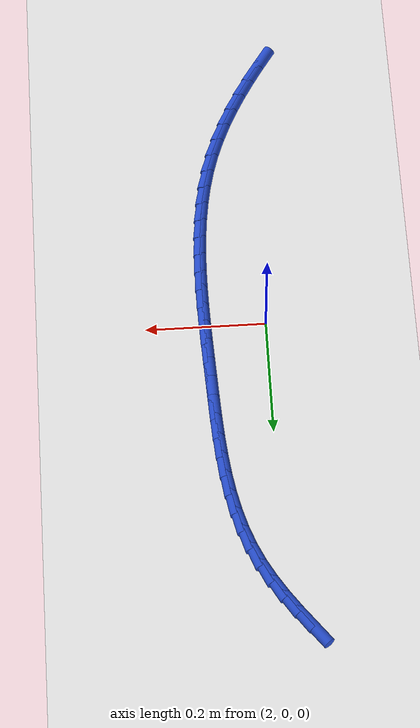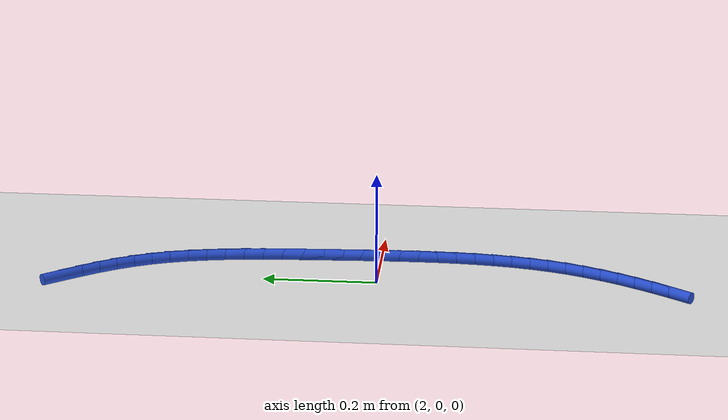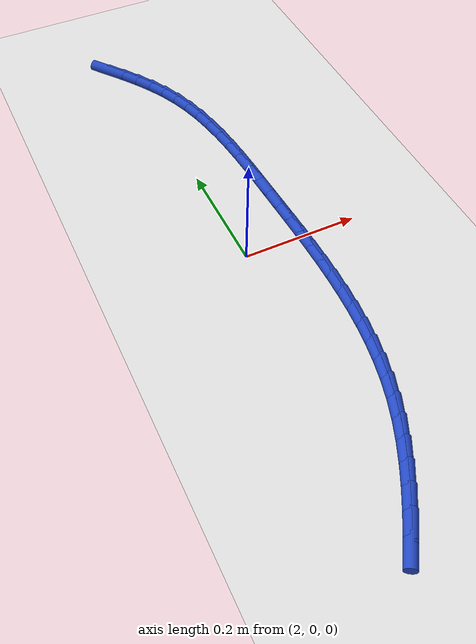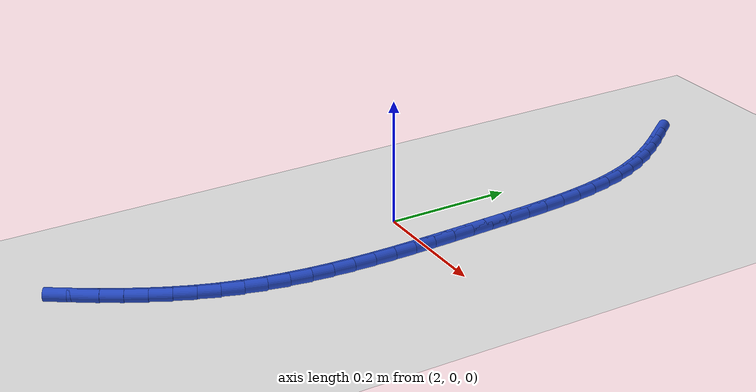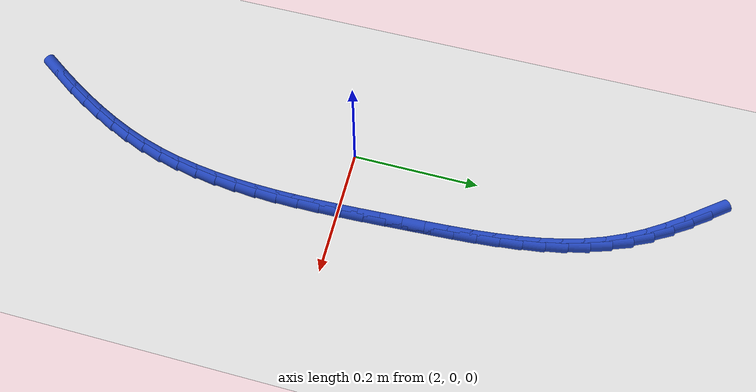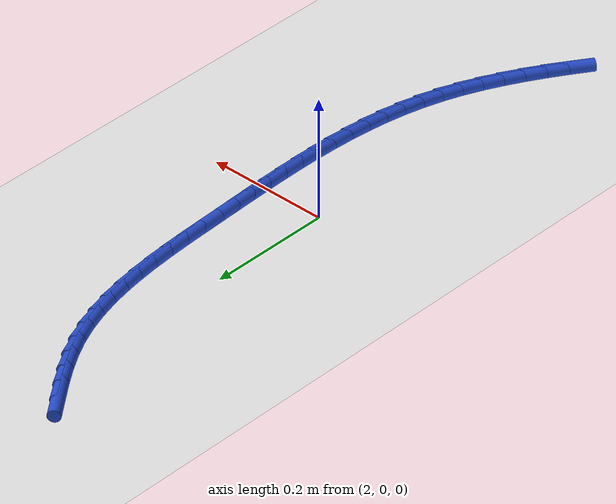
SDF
<sdf version="1.6">
 <world name="default">
  <model name="ground_plane">
   <static>1</static>
   <link name="link">
    <collision name="collision">
     <geometry><plane><normal>0 0 1</normal><size>100 100</size></plane></geometry>
     <surface><friction><ode><mu>100</mu><mu2>50</mu2></ode></friction></surface>
    </collision>
    <visual name="visual">
     <cast_shadows>0</cast_shadows>
     <geometry><plane><normal>0 0 1</normal><size>100 100</size></plane></geometry>
     <material>
      <script><uri>file://media/materials/scripts/gazebo.material</uri><name>Gazebo/WhiteGlow</name></script>
     </material>
    </visual>
   </link>
  </model>
  <model name="line">
   <link name="link_83">
    <pose>1.9635133234780977 0.5467332277633766 0.01 0 1.57 -0.9212567549371053</pose>
    <collision name="collision">
     <geometry><cylinder><radius>0.01</radius><length>0.08</length></cylinder></geometry>
    </collision>
    <visual name="visual">
     <material>
      <script><name>Gazebo/Blue</name><uri>file://media/materials/scripts/gazebo.material</uri></script>
     </material>
     <geometry><cylinder><radius>0.01</radius><length>0.08</length></cylinder></geometry>
    </visual>
   </link>
   <link name="link_84">
    <pose>1.9838382470766431 0.5199715310657844 0.01 0 1.57 -0.9577809125137218</pose>
    <collision name="collision">
     <geometry><cylinder><radius>0.01</radius><length>0.08</length></cylinder></geometry>
    </collision>
    <visual name="visual">
     <material>
      <script><name>Gazebo/Blue</name><uri>file://media/materials/scripts/gazebo.material</uri></script>
     </material>
     <geometry><cylinder><radius>0.01</radius><length>0.08</length></cylinder></geometry>
    </visual>
   </link>
   <link name="link_85">
    <pose>2.0029737586245524 0.49276786948143775 0.01 0 1.57 -1.007544113193847</pose>
    <collision name="collision">
     <geometry><cylinder><radius>0.01</radius><length>0.08</length></cylinder></geometry>
    </collision>
    <visual name="visual">
     <material>
      <script><name>Gazebo/Blue</name><uri>file://media/materials/scripts/gazebo.material</uri></script>
     </material>
     <geometry><cylinder><radius>0.01</radius><length>0.08</length></cylinder></geometry>
    </visual>
   </link>
   <link name="link_86">
    <pose>2.020552856724809 0.4649303486055757 0.01 0 1.57 -1.0708805650021231</pose>
    <collision name="collision">
     <geometry><cylinder><radius>0.01</radius><length>0.08</length></cylinder></geometry>
    </collision>
    <visual name="visual">
     <material>
      <script><name>Gazebo/Blue</name><uri>file://media/materials/scripts/gazebo.material</uri></script>
     </material>
     <geometry><cylinder><radius>0.01</radius><length>0.08</length></cylinder></geometry>
    </visual>
   </link>
   <link name="link_87">
    <pose>2.036208539980396 0.43626707403343595 0.01 0 1.57 -1.1472410660836165</pose>
    <collision name="collision">
     <geometry><cylinder><radius>0.01</radius><length>0.08</length></cylinder></geometry>
    </collision>
    <visual name="visual">
     <material>
      <script><name>Gazebo/Blue</name><uri>file://media/materials/scripts/gazebo.material</uri></script>
     </material>
     <geometry><cylinder><radius>0.01</radius><length>0.08</length></cylinder></geometry>
    </visual>
   </link>
   <link name="link_88">
    <pose>2.0495870495548947 0.406592683746153 0.01 0 1.57 -1.2255441221676449</pose>
    <collision name="collision">
     <geometry><cylinder><radius>0.01</radius><length>0.08</length></cylinder></geometry>
    </collision>
    <visual name="visual">
     <material>
      <script><name>Gazebo/Blue</name><uri>file://media/materials/scripts/gazebo.material</uri></script>
     </material>
     <geometry><cylinder><radius>0.01</radius><length>0.08</length></cylinder></geometry>
    </visual>
   </link>
   <link name="link_89">
    <pose>2.0606364382333635 0.37587069554040914 0.01 0 1.57 -1.294732867674398</pose>
    <collision name="collision">
     <geometry><cylinder><radius>0.01</radius><length>0.08</length></cylinder></geometry>
    </collision>
    <visual name="visual">
     <material>
      <script><name>Gazebo/Blue</name><uri>file://media/materials/scripts/gazebo.material</uri></script>
     </material>
     <geometry><cylinder><radius>0.01</radius><length>0.08</length></cylinder></geometry>
    </visual>
   </link>
   <link name="link_90">
    <pose>2.0696050410072577 0.3442127525875256 0.01 0 1.57 -1.3541168987590173</pose>
    <collision name="collision">
     <geometry><cylinder><radius>0.01</radius><length>0.08</length></cylinder></geometry>
    </collision>
    <visual name="visual">
     <material>
      <script><name>Gazebo/Blue</name><uri>file://media/materials/scripts/gazebo.material</uri></script>
     </material>
     <geometry><cylinder><radius>0.01</radius><length>0.08</length></cylinder></geometry>
    </visual>
   </link>
   <link name="link_91">
    <pose>2.0767541295431444 0.31173687955531665 0.01 0 1.57 -1.4038430804448196</pose>
    <collision name="collision">
     <geometry><cylinder><radius>0.01</radius><length>0.08</length></cylinder></geometry>
    </collision>
    <visual name="visual">
     <material>
      <script><name>Gazebo/Blue</name><uri>file://media/materials/scripts/gazebo.material</uri></script>
     </material>
     <geometry><cylinder><radius>0.01</radius><length>0.08</length></cylinder></geometry>
    </visual>
   </link>
   <link name="link_92">
    <pose>2.08234497550759 0.27856110111159677 0.01 0 1.57 -1.4442786596421489</pose>
    <collision name="collision">
     <geometry><cylinder><radius>0.01</radius><length>0.08</length></cylinder></geometry>
    </collision>
    <visual name="visual">
     <material>
      <script><name>Gazebo/Blue</name><uri>file://media/materials/scripts/gazebo.material</uri></script>
     </material>
     <geometry><cylinder><radius>0.01</radius><length>0.08</length></cylinder></geometry>
    </visual>
   </link>
   <link name="link_93">
    <pose>2.0866388505671605 0.2448034419241805 0.01 0 1.57 -1.4758740457370778</pose>
    <collision name="collision">
     <geometry><cylinder><radius>0.01</radius><length>0.08</length></cylinder></geometry>
    </collision>
    <visual name="visual">
     <material>
      <script><name>Gazebo/Blue</name><uri>file://media/materials/scripts/gazebo.material</uri></script>
     </material>
     <geometry><cylinder><radius>0.01</radius><length>0.08</length></cylinder></geometry>
    </visual>
   </link>
   <link name="link_94">
    <pose>2.0898970263884222 0.21058192666088207 0.01 0 1.57 -1.4990671564346123</pose>
    <collision name="collision">
     <geometry><cylinder><radius>0.01</radius><length>0.08</length></cylinder></geometry>
    </collision>
    <visual name="visual">
     <material>
      <script><name>Gazebo/Blue</name><uri>file://media/materials/scripts/gazebo.material</uri></script>
     </material>
     <geometry><cylinder><radius>0.01</radius><length>0.08</length></cylinder></geometry>
    </visual>
   </link>
   <link name="link_95">
    <pose>2.0923807746379413 0.17601457998951606 0.01 0 1.57 -1.5142226561445344</pose>
    <collision name="collision">
     <geometry><cylinder><radius>0.01</radius><length>0.08</length></cylinder></geometry>
    </collision>
    <visual name="visual">
     <material>
      <script><name>Gazebo/Blue</name><uri>file://media/materials/scripts/gazebo.material</uri></script>
     </material>
     <geometry><cylinder><radius>0.01</radius><length>0.08</length></cylinder></geometry>
    </visual>
   </link>
   <link name="link_96">
    <pose>2.0943513669822846 0.14121942657789727 0.01 0 1.57 -1.5215963764247071</pose>
    <collision name="collision">
     <geometry><cylinder><radius>0.01</radius><length>0.08</length></cylinder></geometry>
    </collision>
    <visual name="visual">
     <material>
      <script><name>Gazebo/Blue</name><uri>file://media/materials/scripts/gazebo.material</uri></script>
     </material>
     <geometry><cylinder><radius>0.01</radius><length>0.08</length></cylinder></geometry>
    </visual>
   </link>
   <link name="link_97">
    <pose>2.096070075088019 0.10631449109383928 0.01 0 1.57 -1.5222162557672867</pose>
    <collision name="collision">
     <geometry><cylinder><radius>0.01</radius><length>0.08</length></cylinder></geometry>
    </collision>
    <visual name="visual">
     <material>
      <script><name>Gazebo/Blue</name><uri>file://media/materials/scripts/gazebo.material</uri></script>
     </material>
     <geometry><cylinder><radius>0.01</radius><length>0.08</length></cylinder></geometry>
    </visual>
   </link>
   <link name="link_98">
    <pose>2.0977669751422616 0.0714120115294317 0.01 0 1.57 -1.5235668779420224</pose>
    <collision name="collision">
     <geometry><cylinder><radius>0.01</radius><length>0.08</length></cylinder></geometry>
    </collision>
    <visual name="visual">
     <material>
      <script><name>Gazebo/Blue</name><uri>file://media/materials/scripts/gazebo.material</uri></script>
     </material>
     <geometry><cylinder><radius>0.01</radius><length>0.08</length></cylinder></geometry>
    </visual>
   </link>
   <link name="link_99">
    <pose>2.0994134736929118 0.03657624336940418 0.01 0 1.57 -1.5293678995990954</pose>
    <collision name="collision">
     <geometry><cylinder><radius>0.01</radius><length>0.08</length></cylinder></geometry>
    </collision>
    <visual name="visual">
     <material>
      <script><name>Gazebo/Blue</name><uri>file://media/materials/scripts/gazebo.material</uri></script>
     </material>
     <geometry><cylinder><radius>0.01</radius><length>0.08</length></cylinder></geometry>
    </visual>
   </link>
   <link name="link_100">
    <pose>2.1008530458413635 0.0018477111666620563 0.01 0 1.57 -1.5397137574480675</pose>
    <collision name="collision">
     <geometry><cylinder><radius>0.01</radius><length>0.08</length></cylinder></geometry>
    </collision>
    <visual name="visual">
     <material>
      <script><name>Gazebo/Blue</name><uri>file://media/materials/scripts/gazebo.material</uri></script>
     </material>
     <geometry><cylinder><radius>0.01</radius><length>0.08</length></cylinder></geometry>
    </visual>
   </link>
   <link name="link_101">
    <pose>2.1019282566082174 -0.032733229343375664 0.01 0 1.57 -1.5547068096913446</pose>
    <collision name="collision">
     <geometry><cylinder><radius>0.01</radius><length>0.08</length></cylinder></geometry>
    </collision>
    <visual name="visual">
     <material>
      <script><name>Gazebo/Blue</name><uri>file://media/materials/scripts/gazebo.material</uri></script>
     </material>
     <geometry><cylinder><radius>0.01</radius><length>0.08</length></cylinder></geometry>
    </visual>
   </link>
   <link name="link_102">
    <pose>2.102481671014077 -0.06712622242528991 0.01 0 1.57 1.567113683514289</pose>
    <collision name="collision">
     <geometry><cylinder><radius>0.01</radius><length>0.08</length></cylinder></geometry>
    </collision>
    <visual name="visual">
     <material>
      <script><name>Gazebo/Blue</name><uri>file://media/materials/scripts/gazebo.material</uri></script>
     </material>
     <geometry><cylinder><radius>0.01</radius><length>0.08</length></cylinder></geometry>
    </visual>
   </link>
   <link name="link_103">
    <pose>2.1023558540795437 -0.10129091234366175 0.01 0 1.57 1.5424087937475406</pose>
    <collision name="collision">
     <geometry><cylinder><radius>0.01</radius><length>0.08</length></cylinder></geometry>
    </collision>
    <visual name="visual">
     <material>
      <script><name>Gazebo/Blue</name><uri>file://media/materials/scripts/gazebo.material</uri></script>
     </material>
     <geometry><cylinder><radius>0.01</radius><length>0.08</length></cylinder></geometry>
    </visual>
   </link>
   <link name="link_104">
    <pose>2.1013933708252197 -0.13518694336307205 0.01 0 1.57 1.512607895582092</pose>
    <collision name="collision">
     <geometry><cylinder><radius>0.01</radius><length>0.08</length></cylinder></geometry>
    </collision>
    <visual name="visual">
     <material>
      <script><name>Gazebo/Blue</name><uri>file://media/materials/scripts/gazebo.material</uri></script>
     </material>
     <geometry><cylinder><radius>0.01</radius><length>0.08</length></cylinder></geometry>
    </visual>
   </link>
   <link name="link_105">
    <pose>2.0994367862717076 -0.1687739597481019 0.01 0 1.57 1.4775554153029624</pose>
    <collision name="collision">
     <geometry><cylinder><radius>0.01</radius><length>0.08</length></cylinder></geometry>
    </collision>
    <visual name="visual">
     <material>
      <script><name>Gazebo/Blue</name><uri>file://media/materials/scripts/gazebo.material</uri></script>
     </material>
     <geometry><cylinder><radius>0.01</radius><length>0.08</length></cylinder></geometry>
    </visual>
   </link>
   <link name="link_106">
    <pose>2.0963286654396085 -0.20201160576333219 0.01 0 1.57 1.4371271831649473</pose>
    <collision name="collision">
     <geometry><cylinder><radius>0.01</radius><length>0.08</length></cylinder></geometry>
    </collision>
    <visual name="visual">
     <material>
      <script><name>Gazebo/Blue</name><uri>file://media/materials/scripts/gazebo.material</uri></script>
     </material>
     <geometry><cylinder><radius>0.01</radius><length>0.08</length></cylinder></geometry>
    </visual>
   </link>
   <link name="link_107">
    <pose>2.091911573349525 -0.2348595256733439 0.01 0 1.57 1.3912609763934949</pose>
    <collision name="collision">
     <geometry><cylinder><radius>0.01</radius><length>0.08</length></cylinder></geometry>
    </collision>
    <visual name="visual">
     <material>
      <script><name>Gazebo/Blue</name><uri>file://media/materials/scripts/gazebo.material</uri></script>
     </material>
     <geometry><cylinder><radius>0.01</radius><length>0.08</length></cylinder></geometry>
    </visual>
   </link>
   <link name="link_108">
    <pose>2.08602807502206 -0.2672773637427182 0.01 0 1.57 1.3399932526942686</pose>
    <collision name="collision">
     <geometry><cylinder><radius>0.01</radius><length>0.08</length></cylinder></geometry>
    </collision>
    <visual name="visual">
     <material>
      <script><name>Gazebo/Blue</name><uri>file://media/materials/scripts/gazebo.material</uri></script>
     </material>
     <geometry><cylinder><radius>0.01</radius><length>0.08</length></cylinder></geometry>
    </visual>
   </link>
   <link name="link_109">
    <pose>2.078520735477815 -0.29922476423603583 0.01 0 1.57 1.2835016400762616</pose>
    <collision name="collision">
     <geometry><cylinder><radius>0.01</radius><length>0.08</length></cylinder></geometry>
    </collision>
    <visual name="visual">
     <material>
      <script><name>Gazebo/Blue</name><uri>file://media/materials/scripts/gazebo.material</uri></script>
     </material>
     <geometry><cylinder><radius>0.01</radius><length>0.08</length></cylinder></geometry>
    </visual>
   </link>
   <link name="link_110">
    <pose>2.0692321898471446 -0.33066138772294706 0.01 0 1.57 1.2244680022200003</pose>
    <collision name="collision">
     <geometry><cylinder><radius>0.01</radius><length>0.08</length></cylinder></geometry>
    </collision>
    <visual name="visual">
     <material>
      <script><name>Gazebo/Blue</name><uri>file://media/materials/scripts/gazebo.material</uri></script>
     </material>
     <geometry><cylinder><radius>0.01</radius><length>0.08</length></cylinder></geometry>
    </visual>
   </link>
   <link name="link_111">
    <pose>2.0580801400166835 -0.3615643526672016 0.01 0 1.57 1.170003999008544</pose>
    <collision name="collision">
     <geometry><cylinder><radius>0.01</radius><length>0.08</length></cylinder></geometry>
    </collision>
    <visual name="visual">
     <material>
      <script><name>Gazebo/Blue</name><uri>file://media/materials/scripts/gazebo.material</uri></script>
     </material>
     <geometry><cylinder><radius>0.01</radius><length>0.08</length></cylinder></geometry>
    </visual>
   </link>
   <link name="link_112">
    <pose>2.0452000648812367 -0.3919614248248342 0.01 0 1.57 1.121434706564153</pose>
    <collision name="collision">
     <geometry><cylinder><radius>0.01</radius><length>0.08</length></cylinder></geometry>
    </collision>
    <visual name="visual">
     <material>
      <script><name>Gazebo/Blue</name><uri>file://media/materials/scripts/gazebo.material</uri></script>
     </material>
     <geometry><cylinder><radius>0.01</radius><length>0.08</length></cylinder></geometry>
    </visual>
   </link>
   <link name="link_113">
    <pose>2.03076671173525 -0.4218895024040636 0.01 0 1.57 1.0787115046382059</pose>
    <collision name="collision">
     <geometry><cylinder><radius>0.01</radius><length>0.08</length></cylinder></geometry>
    </collision>
    <visual name="visual">
     <material>
      <script><name>Gazebo/Blue</name><uri>file://media/materials/scripts/gazebo.material</uri></script>
     </material>
     <geometry><cylinder><radius>0.01</radius><length>0.08</length></cylinder></geometry>
    </visual>
   </link>
   <link name="link_114">
    <pose>2.014954827873165 -0.4513854836131083 0.01 0 1.57 1.0416915425611355</pose>
    <collision name="collision">
     <geometry><cylinder><radius>0.01</radius><length>0.08</length></cylinder></geometry>
    </collision>
    <visual name="visual">
     <material>
      <script><name>Gazebo/Blue</name><uri>file://media/materials/scripts/gazebo.material</uri></script>
     </material>
     <geometry><cylinder><radius>0.01</radius><length>0.08</length></cylinder></geometry>
    </visual>
   </link>
   <link name="link_115">
    <pose>1.9979391605894246 -0.48048626666018696 0.01 0 1.57 1.010181756165471</pose>
    <collision name="collision">
     <geometry><cylinder><radius>0.01</radius><length>0.08</length></cylinder></geometry>
    </collision>
    <visual name="visual">
     <material>
      <script><name>Gazebo/Blue</name><uri>file://media/materials/scripts/gazebo.material</uri></script>
     </material>
     <geometry><cylinder><radius>0.01</radius><length>0.08</length></cylinder></geometry>
    </visual>
   </link>
   <link name="link_116">
    <pose>1.9798944571784716 -0.5092287497535174 0.01 0 1.57 0.9839735091052326</pose>
    <collision name="collision">
     <geometry><cylinder><radius>0.01</radius><length>0.08</length></cylinder></geometry>
    </collision>
    <visual name="visual">
     <material>
      <script><name>Gazebo/Blue</name><uri>file://media/materials/scripts/gazebo.material</uri></script>
     </material>
     <geometry><cylinder><radius>0.01</radius><length>0.08</length></cylinder></geometry>
    </visual>
   </link>
  </model>
 </world>
</sdf>
